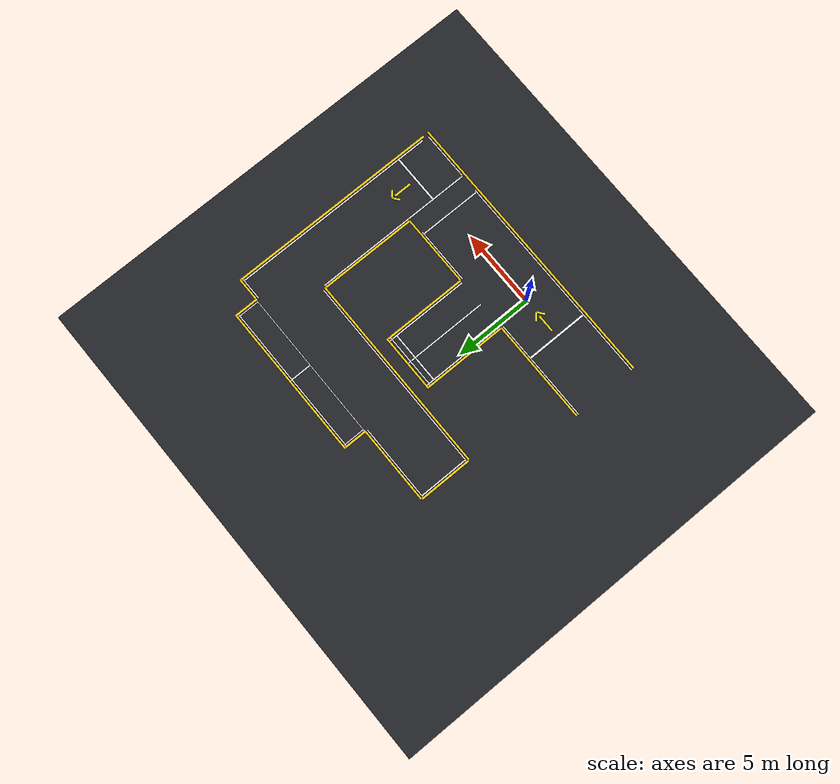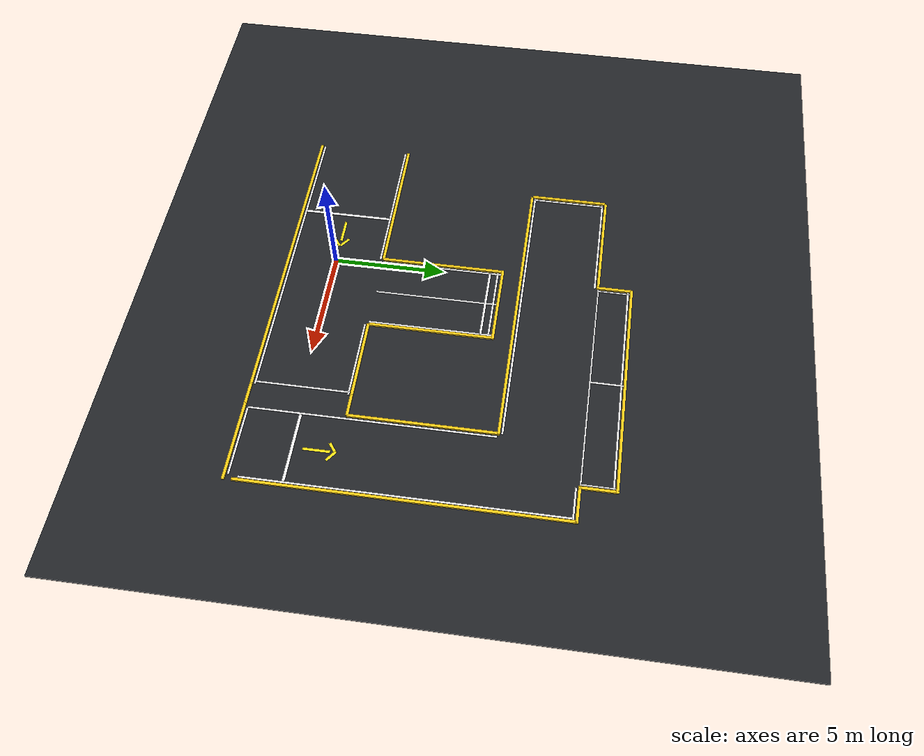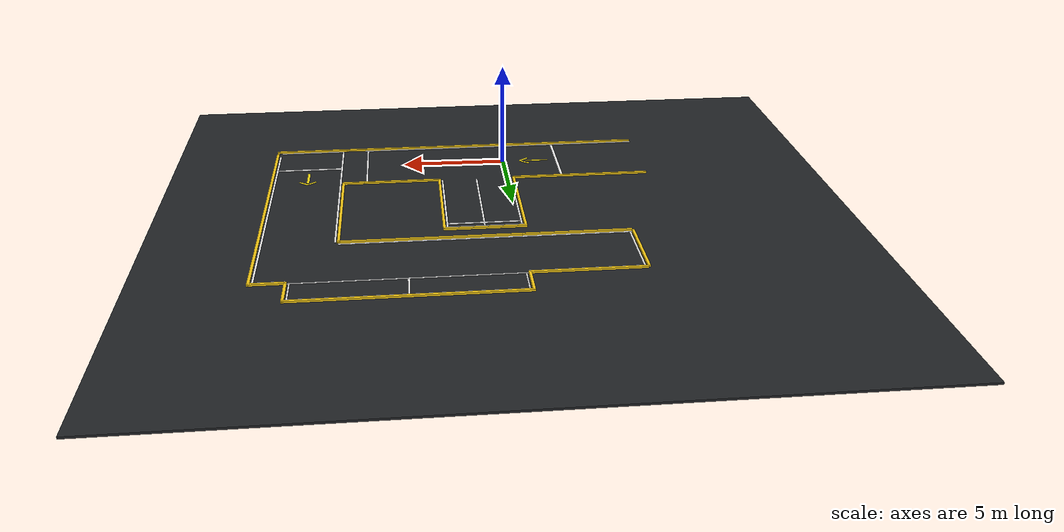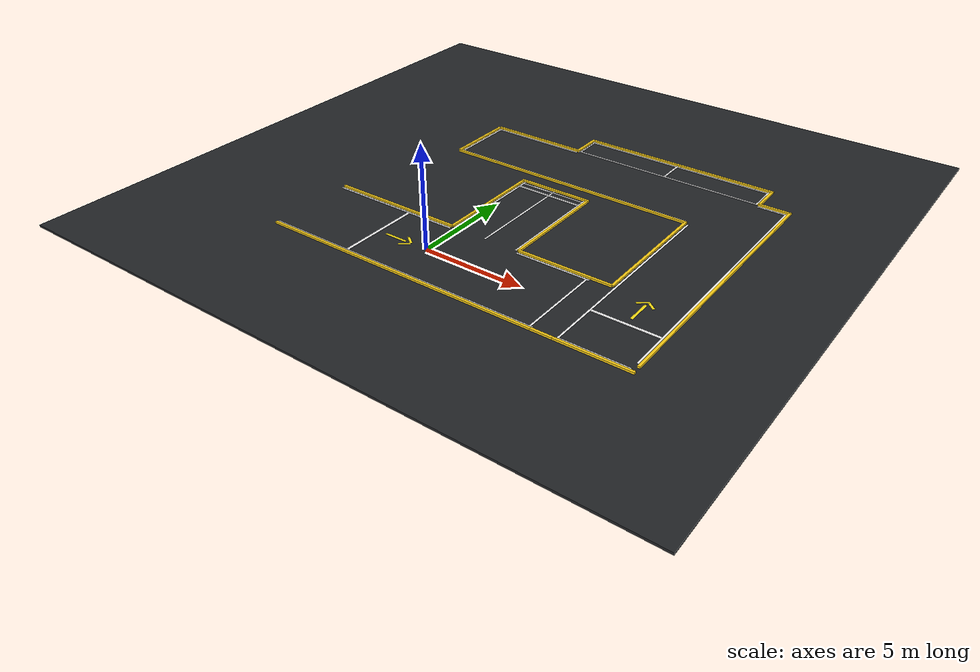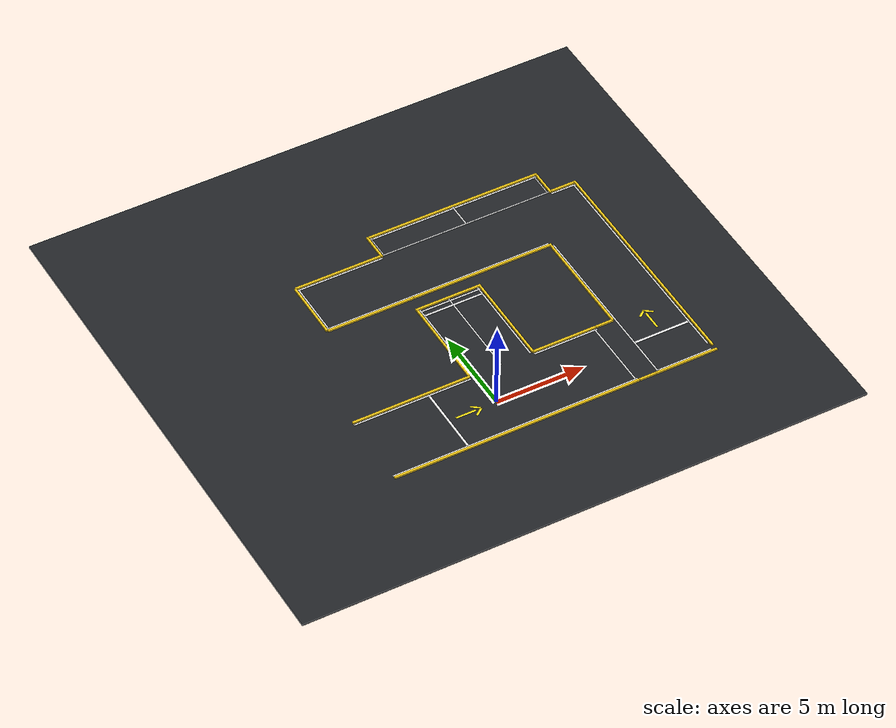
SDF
<?xml version="1.0"?>
<sdf version="1.10">
  <world name="t_parking_exam">
    <physics name="parking_physics" type="ignored">
      <max_step_size>0.001</max_step_size>
      <real_time_factor>1.0</real_time_factor>
    </physics>

    <!-- Gazebo Sim 8 system plugins, verified from the local installation. -->
    <plugin filename="gz-sim-physics-system"
            name="gz::sim::systems::Physics"/>
    <plugin filename="gz-sim-user-commands-system"
            name="gz::sim::systems::UserCommands"/>
    <plugin filename="gz-sim-scene-broadcaster-system"
            name="gz::sim::systems::SceneBroadcaster"/>
    <plugin filename="gz-sim-sensors-system"
            name="gz::sim::systems::Sensors">
      <render_engine>ogre2</render_engine>
    </plugin>

    <scene>
      <ambient>0.45 0.45 0.45 1</ambient>
      <background>0.72 0.80 0.88 1</background>
      <shadows>true</shadows>
    </scene>

    <gui fullscreen="false">
      <plugin name="3D View" filename="GzScene3D">
        <gz-gui>
          <title>3D View</title>
          <property type="bool" key="showTitleBar">0</property>
          <property type="string" key="state">docked</property>
        </gz-gui>
        <engine>ogre2</engine>
        <scene>scene</scene>
        <camera_pose>-15 -14 32 0 0.88 0.72</camera_pose>
      </plugin>
      <plugin name="World control" filename="WorldControl">
        <play_pause>true</play_pause>
        <step>true</step>
      </plugin>
      <plugin name="Entity tree" filename="EntityTree"/>
    </gui>

    <light name="sun" type="directional">
      <pose>0 0 12 0 0 0</pose>
      <cast_shadows>true</cast_shadows>
      <diffuse>0.9 0.9 0.9 1</diffuse>
      <specular>0.2 0.2 0.2 1</specular>
      <attenuation>
        <range>1000</range>
        <constant>0.9</constant>
        <linear>0.01</linear>
        <quadratic>0.001</quadratic>
      </attenuation>
      <direction>-0.45 0.25 -0.86</direction>
    </light>

    <light name="parking_fill_light" type="point">
      <pose>1.5 3.5 6 0 0 0</pose>
      <cast_shadows>false</cast_shadows>
      <diffuse>0.55 0.55 0.55 1</diffuse>
      <specular>0.05 0.05 0.05 1</specular>
      <attenuation>
        <range>20</range>
        <constant>0.5</constant>
        <linear>0.02</linear>
        <quadratic>0.002</quadratic>
      </attenuation>
    </light>

    <!-- The top of the asphalt is exactly z=0. -->
    <model name="asphalt_ground">
      <static>true</static>
      <pose>0.5 6.5 -0.05 0 0 0</pose>
      <link name="ground_link">
        <collision name="ground_collision">
          <geometry>
            <box>
              <size>32 30 0.10</size>
            </box>
          </geometry>
          <surface>
            <friction>
              <ode>
                <mu>1.2</mu>
                <mu2>1.2</mu2>
              </ode>
            </friction>
          </surface>
        </collision>
        <visual name="ground_visual">
          <geometry>
            <box>
              <size>32 30 0.10</size>
            </box>
          </geometry>
          <material>
            <ambient>0.09 0.10 0.11 1</ambient>
            <diffuse>0.14 0.15 0.16 1</diffuse>
            <specular>0.02 0.02 0.02 1</specular>
          </material>
        </visual>
      </link>
    </model>

    <model name="main_right_boundary">
      <static>true</static>
      <pose>0 -2.16 0.045 0 0 0</pose>
      <link name="boundary_link">
        <collision name="boundary_collision">
          <geometry><box><size>14.0 0.12 0.090</size></box></geometry>
        </collision>
        <visual name="boundary_visual">
          <geometry><box><size>14.0 0.12 0.090</size></box></geometry>
          <material>
            <ambient>0.95 0.75 0.05 1</ambient>
            <diffuse>1.0 0.82 0.08 1</diffuse>
          </material>
        </visual>
      </link>
    </model>

    <model name="main_left_boundary_west">
      <static>true</static>
      <pose>-3.665 2.16 0.045 0 0 0</pose>
      <link name="boundary_link">
        <collision name="boundary_collision">
          <geometry><box><size>6.67 0.12 0.090</size></box></geometry>
        </collision>
        <visual name="boundary_visual">
          <geometry><box><size>6.67 0.12 0.090</size></box></geometry>
          <material>
            <ambient>0.95 0.75 0.05 1</ambient>
            <diffuse>1.0 0.82 0.08 1</diffuse>
          </material>
        </visual>
      </link>
    </model>

    <model name="main_lane_upper_east_boundary">
      <static>true</static>
      <pose>5.165 2.16 0.045 0 0 0</pose>
      <link name="boundary_link">
        <collision name="boundary_collision">
          <geometry><box><size>3.67 0.12 0.090</size></box></geometry>
        </collision>
        <visual name="boundary_visual">
          <geometry><box><size>3.67 0.12 0.090</size></box></geometry>
          <material>
            <ambient>0.95 0.75 0.05 1</ambient>
            <diffuse>1.0 0.82 0.08 1</diffuse>
          </material>
        </visual>
      </link>
    </model>

    <model name="combined_connector_upper_boundary">
      <static>true</static><pose>7.5 2.16 0.045 0 0 0</pose>
      <link name="boundary_link"><collision name="boundary_collision"><geometry><box><size>1.0 0.12 0.090</size></box></geometry></collision><visual name="boundary_visual"><geometry><box><size>1.0 0.12 0.090</size></box></geometry><material><ambient>0.95 0.75 0.05 1</ambient><diffuse>1 0.82 0.08 1</diffuse></material></visual></link>
    </model>
    <model name="combined_connector_lower_boundary">
      <static>true</static><pose>7.5 -2.16 0.045 0 0 0</pose>
      <link name="boundary_link"><collision name="boundary_collision"><geometry><box><size>1.0 0.12 0.090</size></box></geometry></collision><visual name="boundary_visual"><geometry><box><size>1.0 0.12 0.090</size></box></geometry><material><ambient>0.95 0.75 0.05 1</ambient><diffuse>1 0.82 0.08 1</diffuse></material></visual></link>
    </model>

    <!-- Expanded T bay: x=[-0.33, 3.33], y=[2.16, 7.59]. -->
    <model name="parking_bay_west_boundary">
      <static>true</static>
      <pose>-0.33 4.875 0.045 0 0 0</pose>
      <link name="boundary_link">
        <collision name="boundary_collision">
          <geometry><box><size>0.12 5.43 0.090</size></box></geometry>
        </collision>
        <visual name="boundary_visual">
          <geometry><box><size>0.12 5.43 0.090</size></box></geometry>
          <material>
            <ambient>0.95 0.75 0.05 1</ambient>
            <diffuse>1.0 0.82 0.08 1</diffuse>
          </material>
        </visual>
      </link>
    </model>

    <model name="parking_bay_east_boundary">
      <static>true</static>
      <pose>3.33 4.875 0.045 0 0 0</pose>
      <link name="boundary_link">
        <collision name="boundary_collision">
          <geometry><box><size>0.12 5.43 0.090</size></box></geometry>
        </collision>
        <visual name="boundary_visual">
          <geometry><box><size>0.12 5.43 0.090</size></box></geometry>
          <material>
            <ambient>0.95 0.75 0.05 1</ambient>
            <diffuse>1.0 0.82 0.08 1</diffuse>
          </material>
        </visual>
      </link>
    </model>

    <!--
      Continuous physical curb across the inner end of both parking spaces.
      Its inner face is y=7.59 and its ends meet both side boundaries.
    -->
    <model name="parking_bay_rear_boundary">
      <static>true</static>
      <pose>1.5 7.65 0.045 0 0 0</pose>
      <link name="rear_boundary_link">
        <collision name="rear_boundary_collision">
          <geometry><box><size>3.78 0.12 0.090</size></box></geometry>
        </collision>
        <visual name="rear_boundary_visual">
          <geometry><box><size>3.78 0.12 0.090</size></box></geometry>
          <material>
            <ambient>0.95 0.75 0.05 1</ambient>
            <diffuse>1.0 0.82 0.08 1</diffuse>
          </material>
        </visual>
      </link>
    </model>

    <!-- Connected course: northbound right leg, left turn, westbound upper leg. -->
    <model name="parallel_vertical_lane_left_boundary">
      <static>true</static><pose>8.0 5.36 0.045 0 0 0</pose>
      <link name="boundary_link"><collision name="boundary_collision"><geometry><box><size>0.12 6.40 0.090</size></box></geometry></collision><visual name="boundary_visual"><geometry><box><size>0.12 6.40 0.090</size></box></geometry><material><ambient>0.95 0.75 0.05 1</ambient><diffuse>1 0.82 0.08 1</diffuse></material></visual></link>
    </model>
    <model name="parallel_vertical_lane_right_boundary">
      <static>true</static><pose>11.5 5.125 0.045 0 0 0</pose>
      <link name="boundary_link"><collision name="boundary_collision"><geometry><box><size>0.12 13.87 0.090</size></box></geometry></collision><visual name="boundary_visual"><geometry><box><size>0.12 13.87 0.090</size></box></geometry><material><ambient>0.95 0.75 0.05 1</ambient><diffuse>1 0.82 0.08 1</diffuse></material></visual></link>
    </model>
    <model name="parallel_start_zone_boundary">
      <static>true</static><pose>9.75 -2.16 0.045 0 0 0</pose>
      <link name="boundary_link"><collision name="boundary_collision"><geometry><box><size>3.62 0.12 0.090</size></box></geometry></collision><visual name="boundary_visual"><geometry><box><size>3.62 0.12 0.090</size></box></geometry><material><ambient>0.95 0.75 0.05 1</ambient><diffuse>1 0.82 0.08 1</diffuse></material></visual></link>
    </model>
    <model name="parallel_upper_lane_bottom_boundary">
      <static>true</static><pose>4.0 8.5 0.045 0 0 0</pose>
      <link name="boundary_link"><collision name="boundary_collision"><geometry><box><size>8.12 0.12 0.090</size></box></geometry></collision><visual name="boundary_visual"><geometry><box><size>8.12 0.12 0.090</size></box></geometry><material><ambient>0.95 0.75 0.05 1</ambient><diffuse>1 0.82 0.08 1</diffuse></material></visual></link>
    </model>
    <model name="parallel_upper_lane_left_boundary">
      <static>true</static><pose>0.0 12.75 0.045 0 0 0</pose>
      <link name="boundary_link"><collision name="boundary_collision"><geometry><box><size>0.12 1.62 0.090</size></box></geometry></collision><visual name="boundary_visual"><geometry><box><size>0.12 1.62 0.090</size></box></geometry><material><ambient>0.95 0.75 0.05 1</ambient><diffuse>1 0.82 0.08 1</diffuse></material></visual></link>
    </model>

    <!-- Five-metre westbound run-out after the two parallel spaces. -->
    <model name="parallel_upper_lane_west_extension_top_boundary">
      <static>true</static><pose>-2.515 12.0 0.045 0 0 0</pose>
      <link name="boundary_link"><collision name="boundary_collision"><geometry><box><size>4.97 0.12 0.090</size></box></geometry></collision><visual name="boundary_visual"><geometry><box><size>4.97 0.12 0.090</size></box></geometry><material><ambient>0.95 0.75 0.05 1</ambient><diffuse>1 0.82 0.08 1</diffuse></material></visual></link>
    </model>
    <model name="parallel_upper_lane_west_extension_bottom_boundary">
      <static>true</static><pose>-2.515 8.5 0.045 0 0 0</pose>
      <link name="boundary_link"><collision name="boundary_collision"><geometry><box><size>4.97 0.12 0.090</size></box></geometry></collision><visual name="boundary_visual"><geometry><box><size>4.97 0.12 0.090</size></box></geometry><material><ambient>0.95 0.75 0.05 1</ambient><diffuse>1 0.82 0.08 1</diffuse></material></visual></link>
    </model>
    <model name="parallel_upper_lane_west_end_boundary">
      <static>true</static><pose>-5.03 10.25 0.045 0 0 0</pose>
      <link name="boundary_link"><collision name="boundary_collision"><geometry><box><size>0.12 3.44 0.090</size></box></geometry></collision><visual name="boundary_visual"><geometry><box><size>0.12 3.44 0.090</size></box></geometry><material><ambient>0.95 0.75 0.05 1</ambient><diffuse>1 0.82 0.08 1</diffuse></material></visual></link>
    </model>
    <model name="parallel_upper_lane_top_east_boundary">
      <static>true</static><pose>10.75 12.0 0.045 0 0 0</pose>
      <link name="boundary_link"><collision name="boundary_collision"><geometry><box><size>1.62 0.12 0.090</size></box></geometry></collision><visual name="boundary_visual"><geometry><box><size>1.62 0.12 0.090</size></box></geometry><material><ambient>0.95 0.75 0.05 1</ambient><diffuse>1 0.82 0.08 1</diffuse></material></visual></link>
    </model>
    <model name="parallel_slots_outer_boundary">
      <static>true</static><pose>5.0 13.5 0.045 0 0 0</pose>
      <link name="boundary_link"><collision name="boundary_collision"><geometry><box><size>10.12 0.12 0.090</size></box></geometry></collision><visual name="boundary_visual"><geometry><box><size>10.12 0.12 0.090</size></box></geometry><material><ambient>0.95 0.75 0.05 1</ambient><diffuse>1 0.82 0.08 1</diffuse></material></visual></link>
    </model>
    <model name="parallel_slots_east_end_boundary">
      <static>true</static><pose>10.0 12.75 0.045 0 0 0</pose>
      <link name="boundary_link"><collision name="boundary_collision"><geometry><box><size>0.12 1.62 0.090</size></box></geometry></collision><visual name="boundary_visual"><geometry><box><size>0.12 1.62 0.090</size></box></geometry><material><ambient>0.95 0.75 0.05 1</ambient><diffuse>1 0.82 0.08 1</diffuse></material></visual></link>
    </model>

    <!-- Two 5.0 x 1.5 m visual-only parallel spaces, open toward the lane. -->
    <model name="parallel_upper_slot_divider">
      <static>true</static><pose>5.0 12.75 0.016 0 0 0</pose>
      <link name="paint_link"><visual name="paint_visual"><geometry><box><size>0.08 1.50 0.028</size></box></geometry><material><ambient>1 1 1 1</ambient><diffuse>1 1 1 1</diffuse></material></visual></link>
    </model>
    <model name="parallel_slots_lane_edge_paint">
      <static>true</static><pose>5.0 12.02 0.016 0 0 0</pose>
      <link name="paint_link"><visual name="paint_visual"><geometry><box><size>10.0 0.06 0.028</size></box></geometry><material><ambient>1 1 1 1</ambient><diffuse>1 1 1 1</diffuse></material></visual></link>
    </model>
    <model name="parallel_slot_1_west_paint">
      <static>true</static><pose>0.15 12.75 0.016 0 0 0</pose>
      <link name="paint_link"><visual name="paint_visual"><geometry><box><size>0.06 1.50 0.028</size></box></geometry><material><ambient>1 1 1 1</ambient><diffuse>1 1 1 1</diffuse></material></visual></link>
    </model>
    <model name="parallel_slot_2_east_paint">
      <static>true</static><pose>9.85 12.75 0.016 0 0 0</pose>
      <link name="paint_link"><visual name="paint_visual"><geometry><box><size>0.06 1.50 0.028</size></box></geometry><material><ambient>1 1 1 1</ambient><diffuse>1 1 1 1</diffuse></material></visual></link>
    </model>

    <!-- Parallel-mode start markings, aligned for northbound travel. -->
    <model name="parallel_start_stop_line">
      <static>true</static><pose>9.75 0.25 0.016 0 0 0</pose>
      <link name="paint_link"><visual name="paint_visual"><geometry><box><size>3.10 0.12 0.028</size></box></geometry><material><ambient>1 1 1 1</ambient><diffuse>1 1 1 1</diffuse><emissive>0.2 0.2 0.2 1</emissive></material></visual></link>
    </model>
    <model name="parallel_start_arrow_shaft">
      <static>true</static><pose>9.75 1.25 0.0035 0 0 0</pose>
      <link name="paint_link"><visual name="paint_visual"><geometry><box><size>0.12 1.15 0.003</size></box></geometry><material><ambient>0.95 0.85 0.05 1</ambient><diffuse>1 0.90 0.08 1</diffuse></material></visual></link>
    </model>
    <model name="parallel_start_arrow_left">
      <static>true</static><pose>9.57 1.90 0.0035 0 0 0.65</pose>
      <link name="paint_link"><visual name="paint_visual"><geometry><box><size>0.55 0.12 0.003</size></box></geometry><material><ambient>0.95 0.85 0.05 1</ambient><diffuse>1 0.90 0.08 1</diffuse></material></visual></link>
    </model>
    <model name="parallel_start_arrow_right">
      <static>true</static><pose>9.93 1.90 0.0035 0 0 -0.65</pose>
      <link name="paint_link"><visual name="paint_visual"><geometry><box><size>0.55 0.12 0.003</size></box></geometry><material><ambient>0.95 0.85 0.05 1</ambient><diffuse>1 0.90 0.08 1</diffuse></material></visual></link>
    </model>

    <!-- Visual-only white guides, 0.10 m inside the yellow collision faces. -->
    <model name="main_lane_east_end_inner_white">
      <static>true</static><pose>6.87 0 0.014 0 0 0</pose>
      <link name="paint_link"><visual name="paint_visual"><geometry><box><size>0.08 4.02 0.024</size></box></geometry><material><ambient>1 1 1 1</ambient><diffuse>1 1 1 1</diffuse></material></visual></link>
    </model>
    <model name="parallel_start_inner_white">
      <static>true</static><pose>9.75 -2.01 0.014 0 0 0</pose>
      <link name="paint_link"><visual name="paint_visual"><geometry><box><size>3.10 0.08 0.024</size></box></geometry><material><ambient>1 1 1 1</ambient><diffuse>1 1 1 1</diffuse></material></visual></link>
    </model>
    <model name="parallel_vertical_left_inner_white">
      <static>true</static><pose>8.15 3.22 0.014 0 0 0</pose>
      <link name="paint_link"><visual name="paint_visual"><geometry><box><size>0.08 10.46 0.024</size></box></geometry><material><ambient>1 1 1 1</ambient><diffuse>1 1 1 1</diffuse></material></visual></link>
    </model>
    <model name="parallel_vertical_right_inner_white">
      <static>true</static><pose>11.35 5.125 0.014 0 0 0</pose>
      <link name="paint_link"><visual name="paint_visual"><geometry><box><size>0.08 13.45 0.024</size></box></geometry><material><ambient>1 1 1 1</ambient><diffuse>1 1 1 1</diffuse></material></visual></link>
    </model>
    <model name="parallel_upper_bottom_inner_white">
      <static>true</static><pose>1.50 8.65 0.014 0 0 0</pose>
      <link name="paint_link"><visual name="paint_visual"><geometry><box><size>13.0 0.08 0.024</size></box></geometry><material><ambient>1 1 1 1</ambient><diffuse>1 1 1 1</diffuse></material></visual></link>
    </model>
    <model name="parallel_upper_east_inner_white">
      <static>true</static><pose>10.75 11.85 0.014 0 0 0</pose>
      <link name="paint_link"><visual name="paint_visual"><geometry><box><size>1.50 0.08 0.024</size></box></geometry><material><ambient>1 1 1 1</ambient><diffuse>1 1 1 1</diffuse></material></visual></link>
    </model>
    <model name="parallel_slots_outer_inner_white">
      <static>true</static><pose>5.0 13.35 0.014 0 0 0</pose>
      <link name="paint_link"><visual name="paint_visual"><geometry><box><size>10.0 0.08 0.024</size></box></geometry><material><ambient>1 1 1 1</ambient><diffuse>1 1 1 1</diffuse></material></visual></link>
    </model>
    <model name="parallel_extension_top_inner_white">
      <static>true</static><pose>-2.50 11.85 0.014 0 0 0</pose>
      <link name="paint_link"><visual name="paint_visual"><geometry><box><size>5.0 0.08 0.024</size></box></geometry><material><ambient>1 1 1 1</ambient><diffuse>1 1 1 1</diffuse></material></visual></link>
    </model>
    <model name="parallel_extension_west_inner_white">
      <static>true</static><pose>-4.88 10.25 0.014 0 0 0</pose>
      <link name="paint_link"><visual name="paint_visual"><geometry><box><size>0.08 3.20 0.024</size></box></geometry><material><ambient>1 1 1 1</ambient><diffuse>1 1 1 1</diffuse></material></visual></link>
    </model>

    <!-- Painted main-lane boundary lines. They are visual-only static models. -->
    <model name="main_right_paint">
      <static>true</static>
      <pose>0 -2.01 0.014 0 0 0</pose>
      <link name="paint_link">
        <visual name="paint_visual">
          <geometry><box><size>14.0 0.08 0.024</size></box></geometry>
          <material>
            <ambient>0.95 0.95 0.95 1</ambient>
            <diffuse>1 1 1 1</diffuse>
            <emissive>0.15 0.15 0.15 1</emissive>
          </material>
        </visual>
      </link>
    </model>

    <model name="main_left_paint_west">
      <static>true</static>
      <pose>-3.665 2.01 0.014 0 0 0</pose>
      <link name="paint_link">
        <visual name="paint_visual">
          <geometry><box><size>6.67 0.08 0.024</size></box></geometry>
          <material>
            <ambient>0.95 0.95 0.95 1</ambient>
            <diffuse>1 1 1 1</diffuse>
            <emissive>0.15 0.15 0.15 1</emissive>
          </material>
        </visual>
      </link>
    </model>

    <model name="main_left_paint_east">
      <static>true</static>
      <pose>5.165 2.01 0.014 0 0 0</pose>
      <link name="paint_link">
        <visual name="paint_visual">
          <geometry><box><size>3.67 0.08 0.024</size></box></geometry>
          <material>
            <ambient>0.95 0.95 0.95 1</ambient>
            <diffuse>1 1 1 1</diffuse>
            <emissive>0.15 0.15 0.15 1</emissive>
          </material>
        </visual>
      </link>
    </model>

    <!-- Painted T-bay outline, slightly inside the collision curbs. -->
    <model name="parking_bay_west_paint">
      <static>true</static>
      <pose>-0.18 4.875 0.014 0 0 0</pose>
      <link name="paint_link">
        <visual name="paint_visual">
          <geometry><box><size>0.08 5.43 0.024</size></box></geometry>
          <material>
            <ambient>0.95 0.95 0.95 1</ambient>
            <diffuse>1 1 1 1</diffuse>
            <emissive>0.15 0.15 0.15 1</emissive>
          </material>
        </visual>
      </link>
    </model>

    <model name="parking_bay_east_paint">
      <static>true</static>
      <pose>3.18 4.875 0.014 0 0 0</pose>
      <link name="paint_link">
        <visual name="paint_visual">
          <geometry><box><size>0.08 5.43 0.024</size></box></geometry>
          <material>
            <ambient>0.95 0.95 0.95 1</ambient>
            <diffuse>1 1 1 1</diffuse>
            <emissive>0.15 0.15 0.15 1</emissive>
          </material>
        </visual>
      </link>
    </model>

    <model name="parking_bay_inner_paint">
      <static>true</static>
      <pose>1.5 7.44 0.014 0 0 0</pose>
      <link name="paint_link">
        <visual name="paint_visual">
          <geometry><box><size>3.66 0.08 0.024</size></box></geometry>
          <material>
            <ambient>0.95 0.95 0.95 1</ambient>
            <diffuse>1 1 1 1</diffuse>
            <emissive>0.15 0.15 0.15 1</emissive>
          </material>
        </visual>
      </link>
    </model>

    <!--
      Visual-only divider at x=1.5. Its 0.004 m thickness leaves the lower
      surface 0.002 m above the asphalt, avoiding z-fighting without becoming
      a physical obstacle.
    -->
    <model name="parking_bay_center_divider">
      <static>true</static>
      <pose>1.5 4.875 0.006 0 0 0</pose>
      <link name="paint_link">
        <visual name="paint_visual">
          <geometry><box><size>0.08 5.43 0.008</size></box></geometry>
          <material>
            <ambient>0.95 0.95 0.95 1</ambient>
            <diffuse>1 1 1 1</diffuse>
            <emissive>0.15 0.15 0.15 1</emissive>
          </material>
        </visual>
      </link>
    </model>

    <!-- Start line ahead of the initial vehicle pose x=-5.0. -->
    <model name="start_line">
      <static>true</static>
      <pose>-2.75 0 0.016 0 0 0</pose>
      <link name="paint_link">
        <visual name="paint_visual">
          <geometry><box><size>0.12 3.92 0.028</size></box></geometry>
          <material>
            <ambient>1 1 1 1</ambient>
            <diffuse>1 1 1 1</diffuse>
            <emissive>0.2 0.2 0.2 1</emissive>
          </material>
        </visual>
      </link>
    </model>

    <!-- Inner confirmation line, 0.50 m in front of the back curb. -->
    <model name="parking_confirmation_line">
      <static>true</static>
      <pose>1.5 7.09 0.016 0 0 0</pose>
      <link name="paint_link">
        <visual name="paint_visual">
          <geometry><box><size>3.31 0.10 0.028</size></box></geometry>
          <material>
            <ambient>1 1 1 1</ambient>
            <diffuse>1 1 1 1</diffuse>
            <emissive>0.2 0.2 0.2 1</emissive>
          </material>
        </visual>
      </link>
    </model>

    <!-- A three-segment +X direction arrow. -->
    <model name="direction_arrow_shaft">
      <static>true</static>
      <pose>-1.75 0 0.0035 0 0 0</pose>
      <link name="paint_link">
        <visual name="paint_visual">
          <geometry><box><size>1.15 0.12 0.003</size></box></geometry>
          <material>
            <ambient>0.95 0.85 0.05 1</ambient>
            <diffuse>1.0 0.90 0.08 1</diffuse>
            <emissive>0.12 0.10 0.01 1</emissive>
          </material>
        </visual>
      </link>
    </model>

    <model name="direction_arrow_head_left">
      <static>true</static>
      <pose>-1.10 0.18 0.0035 0 0 -0.65</pose>
      <link name="paint_link">
        <visual name="paint_visual">
          <geometry><box><size>0.55 0.12 0.003</size></box></geometry>
          <material>
            <ambient>0.95 0.85 0.05 1</ambient>
            <diffuse>1.0 0.90 0.08 1</diffuse>
            <emissive>0.12 0.10 0.01 1</emissive>
          </material>
        </visual>
      </link>
    </model>

    <model name="direction_arrow_head_right">
      <static>true</static>
      <pose>-1.10 -0.18 0.0035 0 0 0.65</pose>
      <link name="paint_link">
        <visual name="paint_visual">
          <geometry><box><size>0.55 0.12 0.003</size></box></geometry>
          <material>
            <ambient>0.95 0.85 0.05 1</ambient>
            <diffuse>1.0 0.90 0.08 1</diffuse>
            <emissive>0.12 0.10 0.01 1</emissive>
          </material>
        </visual>
      </link>
    </model>
  </world>
</sdf>
